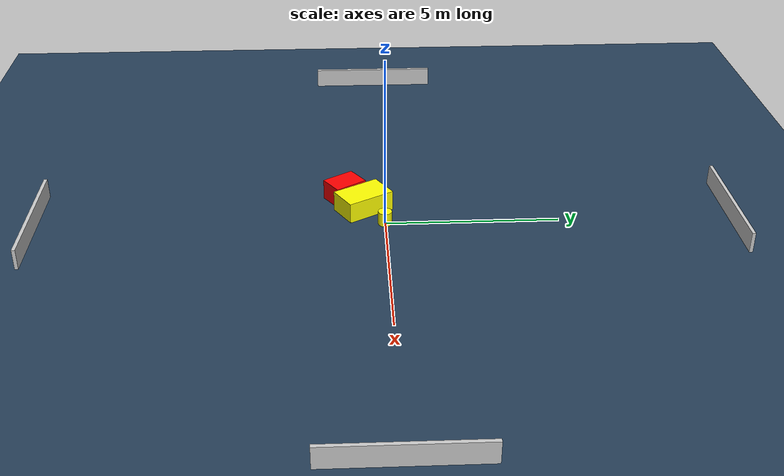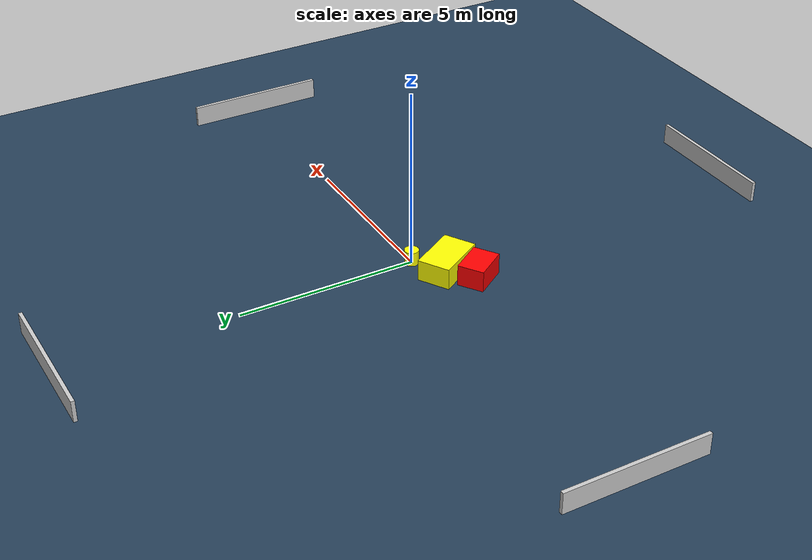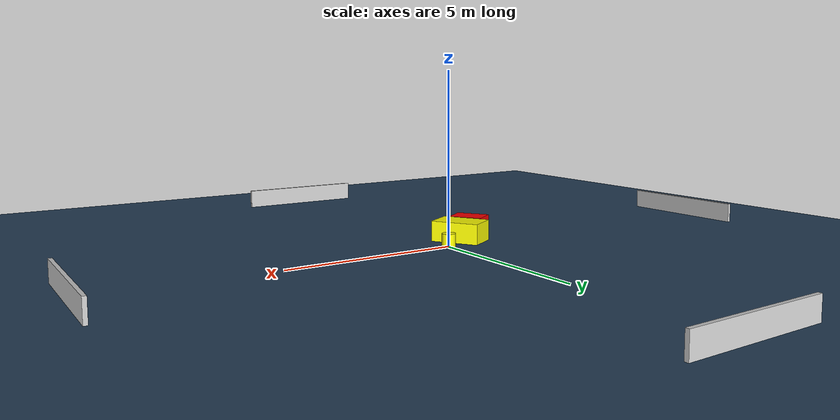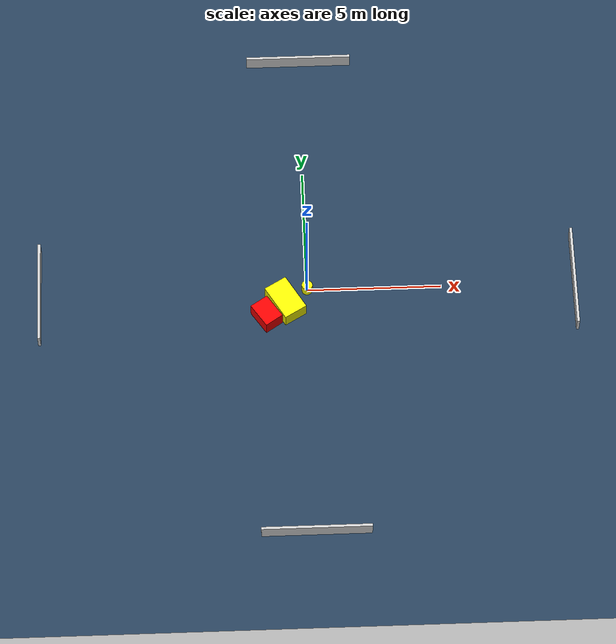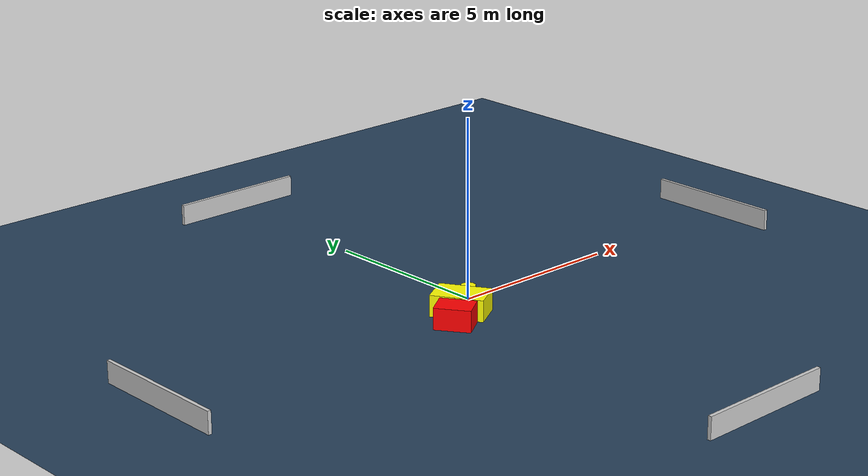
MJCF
<?xml version="1.0" ?>
<mujoco model="generated_environment">
  <option timestep="0.01" integrator="RK4" cone="elliptic"/>
  <default>
    <geom density="1"/>
  </default>
  <asset>
    <texture builtin="gradient" height="3072" name="skybox" rgb1="0.3 0.5 0.7" rgb2="0 0 0" type="skybox" width="512"/>
    <texture builtin="checker" height="300" name="groundplane" rgb1="0.2 0.3 0.4" rgb2="0.1 0.2 0.3" type="2d" width="300"/>
    <material name="groundplane" reflectance="0.2" texrepeat="5 5" texture="groundplane"/>
  </asset>
  <worldbody>
    <light dir="0 0 -1" directional="true" pos="0 0 1.5"/>
    <geom condim="3" friction="0.5 0.005 0.001" material="groundplane" name="floor" pos="0 0 0" size="0 0 0.05" type="plane"/>
    <body name="walls">
      <geom name="wall_1" condim="4" pos="-10.0 0.0 0.3" rgba="0.800000011920929 0.800000011920929 0.800000011920929 1.0" size="0.05 2.0 0.3" type="box"/>
      <geom name="wall_2" condim="4" pos="10.0 0.0 0.3" rgba="0.800000011920929 0.800000011920929 0.800000011920929 1.0" size="0.05 2.0 0.3" type="box"/>
      <geom name="wall_3" condim="4" pos="0.0 -10.0 0.3" rgba="0.800000011920929 0.800000011920929 0.800000011920929 1.0" size="2.0 0.05 0.3" type="box"/>
      <geom name="wall_4" condim="4" pos="0.0 10.0 0.3" rgba="0.800000011920929 0.800000011920929 0.800000011920929 1.0" size="2.0 0.05 0.3" type="box"/>
    </body>
    <body name="robot">
      <joint name="joint_x" type="slide" pos="0 0 0" axis="1 0 0"/>
      <joint name="joint_y" type="slide" pos="0 0 0" axis="0 1 0"/>
      <geom name="robot" type="cylinder" pos="0.0 0.0 0.2" size="0.2 0.2 0.0" mass="5.0" friction="1.0 0.005 0.0001" condim="4" rgba="1.0 1.0 0.0 1.0"/>
    </body>
    <body name="obstacle_1_movable">
      <geom name="obstacle_1_movable" condim="4" pos="-0.8270760764640154 -0.5970547336560753 0.3" euler="0 0 300.71643543322915" friction="0.0 0.005 0.001" rgba="1.0 1.0 0.0 1.0" size="0.7271760590341385 0.4590796167381373 0.3" type="box" mass="0.1"/>
      <joint type="free"/>
    </body>
    <body name="obstacle_2_static">
      <geom name="obstacle_2_static" condim="4" pos="-1.544746840408787 -1.1357163753511097 0.3" euler="0 0 303.8959132879182" friction="0.0 0.005 0.001" rgba="1.0 0.0 0.0 1.0" size="0.5002059592306365 0.3692602119339399 0.3" type="box"/>
    </body>
  </worldbody>
  <actuator>
    <motor name="actuator_x" joint="joint_x" gear="1" ctrlrange="-1 1"/>
    <motor name="actuator_y" joint="joint_y" gear="1" ctrlrange="-1 1"/>
  </actuator>
</mujoco>
